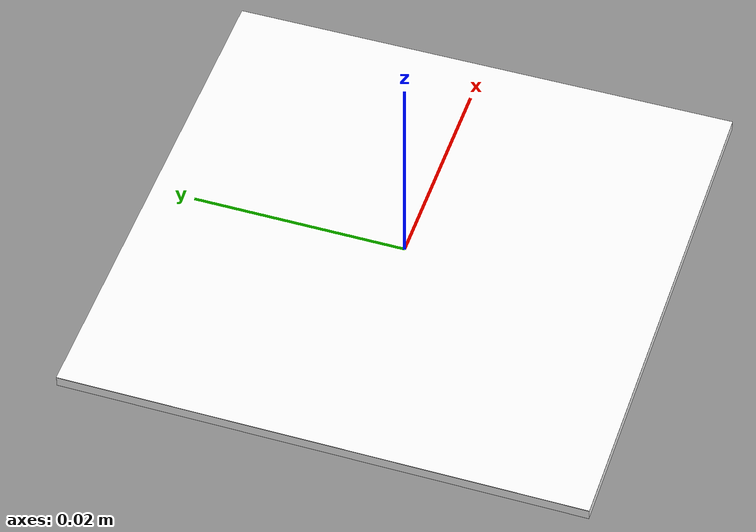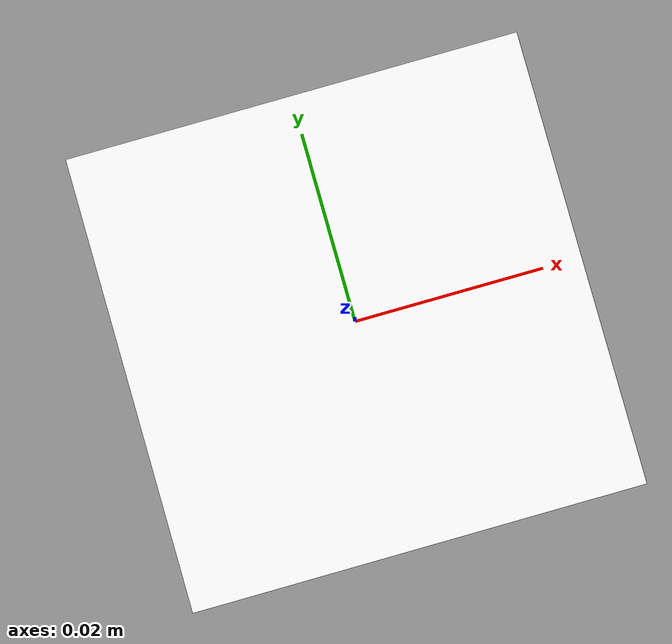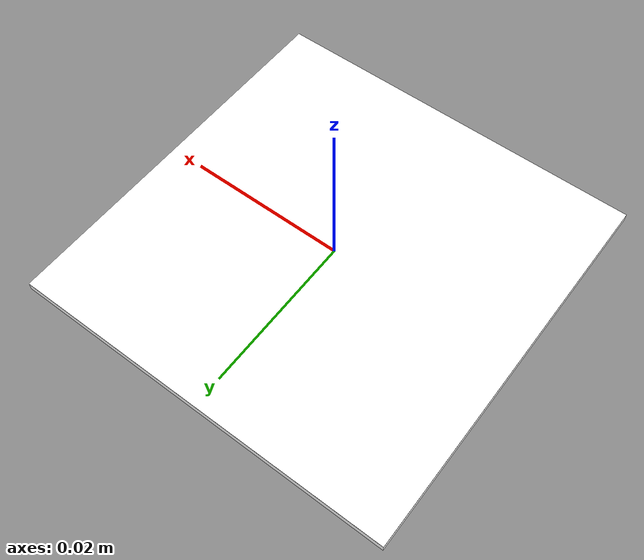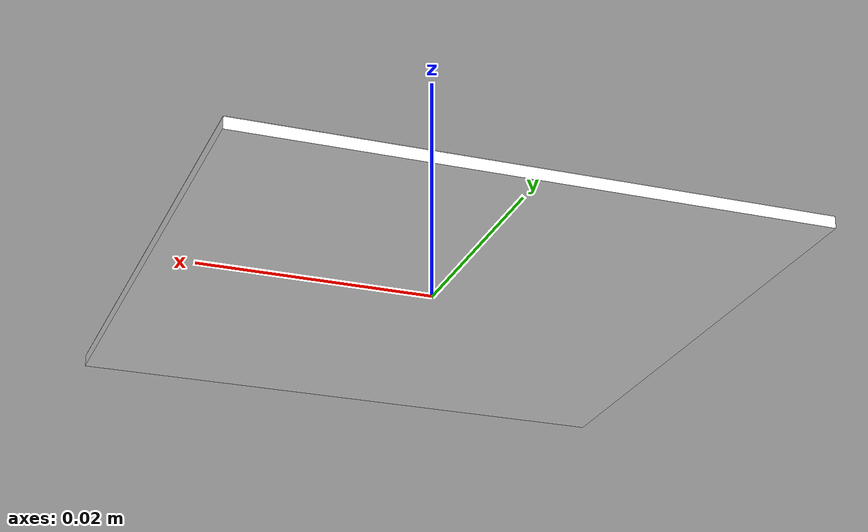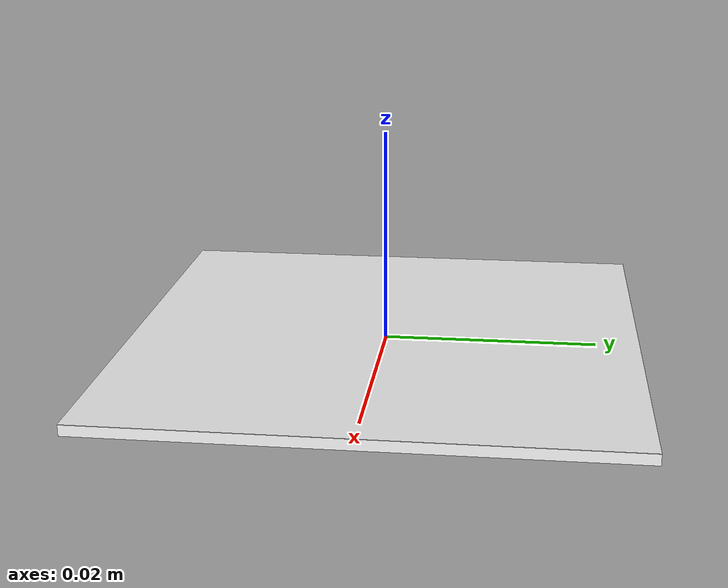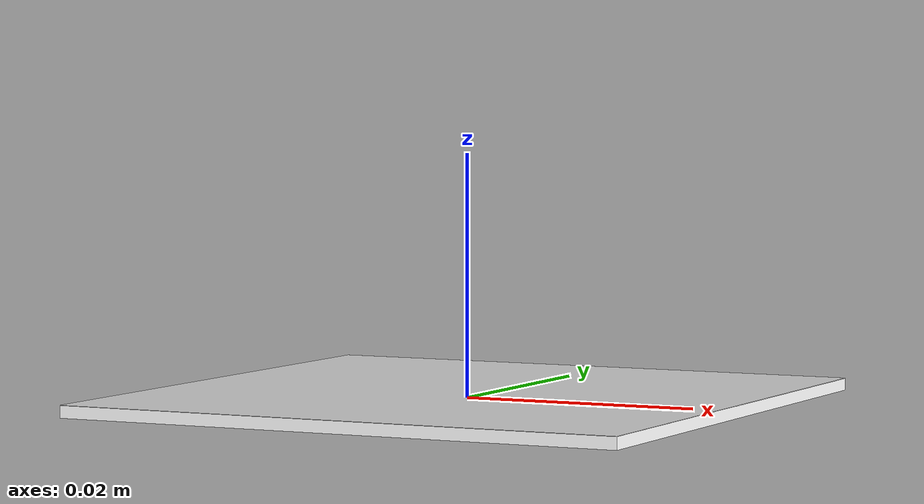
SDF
<?xml version="1.0" ?>
<sdf version="1.9">
  <model name="tag16_05_00000">
    <static>false</static>
    <link name="tag16_link">
      <inertial>
        <mass>0.01</mass>
        <inertia>
          <ixx>0.00001</ixx>
          <ixy>0</ixy>
          <ixz>0</ixz>
          <iyy>0.00001</iyy>
          <iyz>0</iyz>
          <izz>0.00001</izz>
        </inertia>
      </inertial>

      <!-- 1. Solid White Backing Body (Sides and Rear) -->
      <visual name="visual_body">
        <geometry>
          <box>
            <size>0.048 0.048 0.001</size>
          </box>
        </geometry>
        <material>
          <ambient>1 1 1 1</ambient>
          <diffuse>1 1 1 1</diffuse>
          <specular>0.1 0.1 0.1 1</specular>
        </material>
      </visual>

      <!-- 2. Textured Front Face (Plane offset slightly above +Z surface to prevent z-fighting) -->
      <visual name="visual_tag_face">
        <!-- Box thickness is 0.001m (top surface at z=+0.0005m).
             Offset plane to z=0.00051m to sit on top of the face -->
        <pose>0 0 0.00051 0 0 0</pose>
        <geometry>
          <plane>
            <normal>0 0 1</normal>
            <size>0.048 0.048</size>
          </plane>
        </geometry>
        <material>
          <ambient>1 1 1 1</ambient>
          <diffuse>1 1 1 1</diffuse>
          <specular>0.5 0.5 0.5 1</specular>
          <pbr>
            <metal>
              <albedo_map>materials/textures/tag16_05_00000.png</albedo_map>
              <roughness>0.5</roughness>
              <metalness>0.0</metalness>
            </metal>
          </pbr>
        </material>
      </visual>

    </link>
  </model>
</sdf>
